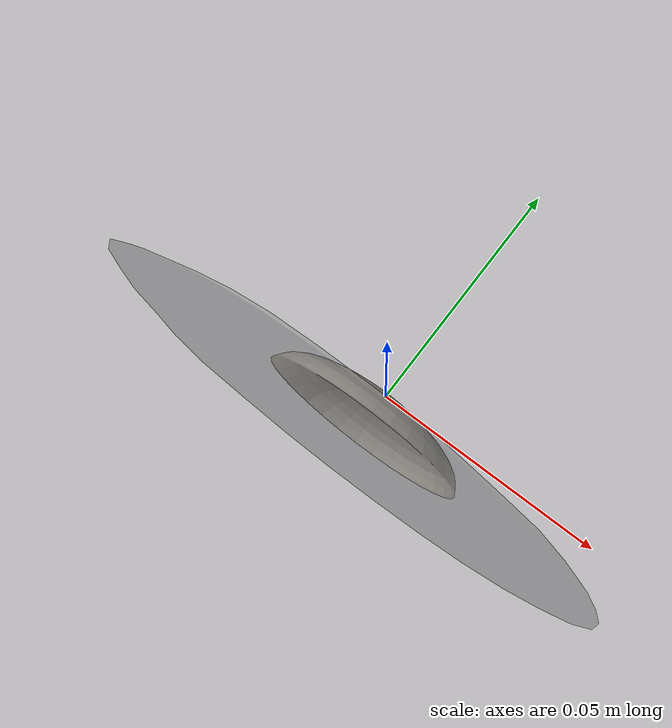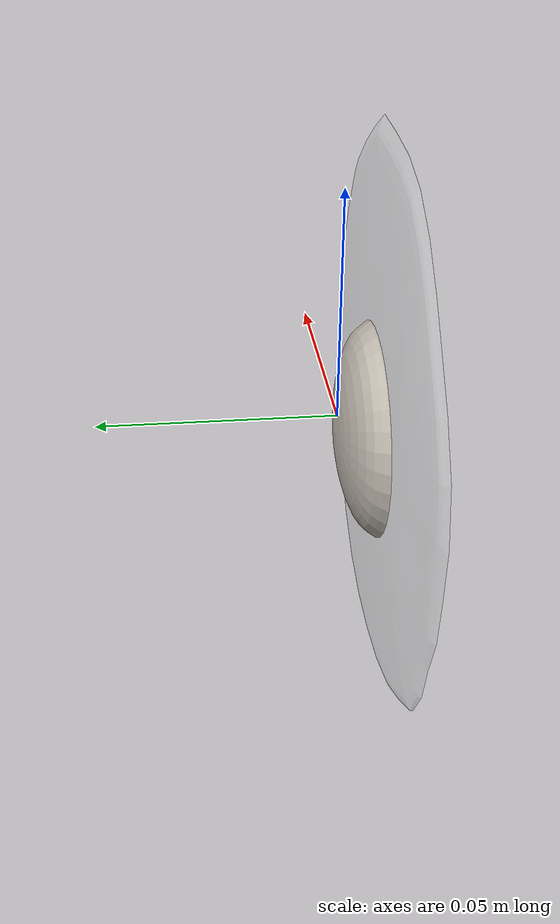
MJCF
<mujoco model="Egg_Cracked_4">
  <compiler autolimits="true" boundmass="0.01" angle="radian"/>
  <default>
    <default class="/">
      <default class="__VISUAL_MJT__">
        <geom contype="0" conaffinity="0" group="0"/>
      </default>
      <default class="__STRUCTURAL_MJT__">
        <geom contype="8" conaffinity="15" group="4" friction="0.90000000000000002 0.90000000000000002 0.001" solref="0.025000000000000001 1" solimp="0.998 0.998 0.001"/>
      </default>
      <default class="__DYNAMIC_MJT__">
        <geom contype="1" conaffinity="15" group="4" friction="0.90000000000000002 0.90000000000000002 0.001" solref="0.025000000000000001 1" solimp="0.998 0.998 0.001"/>
      </default>
    </default>
  </default>
  <asset>
    <texture name="Fried_Egg_White_Uncooked_Mat" type="2d" file="Fried_Egg_AlbedoTransparency.png"/>
    <material name="material_Fried_Egg_White_Uncooked_Mat" class="/" texture="Fried_Egg_White_Uncooked_Mat" specular="0.5" shininess="0.5" rgba="1 1 1 0.5"/>
    <texture name="Fried_Egg_Yolk_Mat" type="2d" file="Fried_Egg_AlbedoTransparency.png"/>
    <material name="material_Fried_Egg_Yolk_Mat" class="/" texture="Fried_Egg_Yolk_Mat" specular="0.5" shininess="0.5" rgba="1 1 1 1"/>
    <mesh name="Egg_Cracked_4_fried_egg_4_0" class="/" file="Egg_Cracked_4_fried_egg_4/Egg_Cracked_4_fried_egg_4_0.obj" scale="1 1 1"/>
    <mesh name="Egg_Cracked_4_fried_egg_4_1" class="/" file="Egg_Cracked_4_fried_egg_4/Egg_Cracked_4_fried_egg_4_1.obj" scale="1 1 1"/>
  </asset>
  <worldbody>
    <body name="Egg_Cracked_4">
      <joint name="Egg_Cracked_4_free" class="/" type="free" pos="0 0 0" axis="0 0 1" stiffness="0" range="0 0" armature="0" damping="0.10000000000000001" frictionloss="0"/>
      <body name="Egg_Cracked_4_fried_egg_4" pos="-0.00022000000000000001 -0.01023 -0.0033400000000000001" quat="1 0 0 0">
        <geom name="Egg_Cracked_4_fried_egg_4_0" class="__VISUAL_MJT__" type="mesh" material="material_Fried_Egg_White_Uncooked_Mat" shellinertia="false" mesh="Egg_Cracked_4_fried_egg_4_0"/>
        <geom name="Egg_Cracked_4_fried_egg_4_1" class="__VISUAL_MJT__" type="mesh" material="material_Fried_Egg_Yolk_Mat" shellinertia="false" mesh="Egg_Cracked_4_fried_egg_4_1"/>
        <geom name="Egg_Cracked_4_PrimitiveCollider_0" class="__DYNAMIC_MJT__" type="box" size="0.061105690896511078 0.010231256484985352 0.060419976711273193" rgba="0 1 0 1" pos="-0.00021717697381973267 0.010231256484985352 0.003341972827911377" quat="1 0 0 0"/>
      </body>
    </body>
  </worldbody>
</mujoco>
